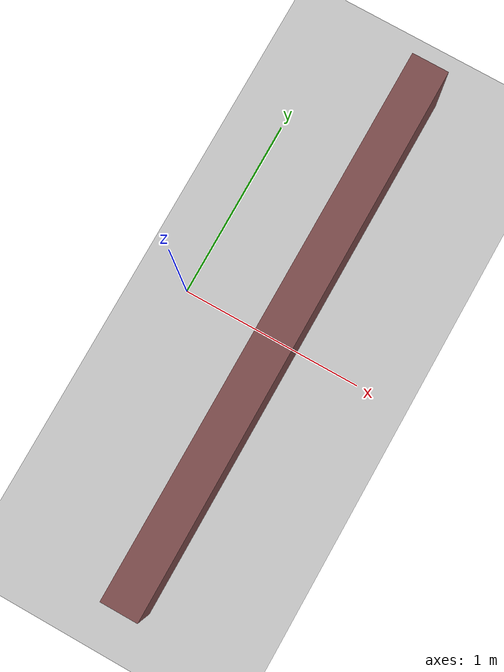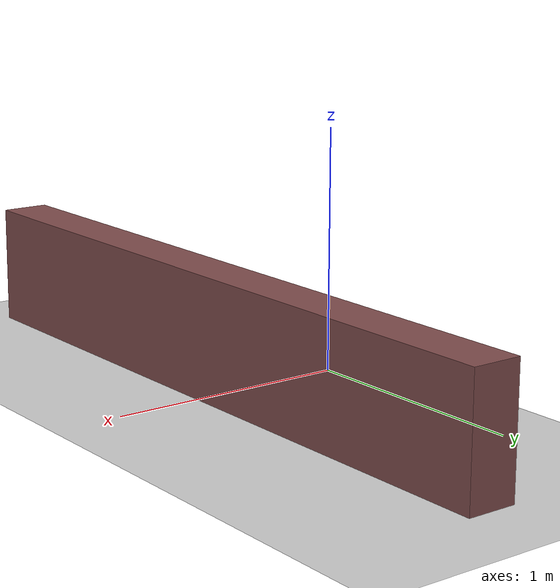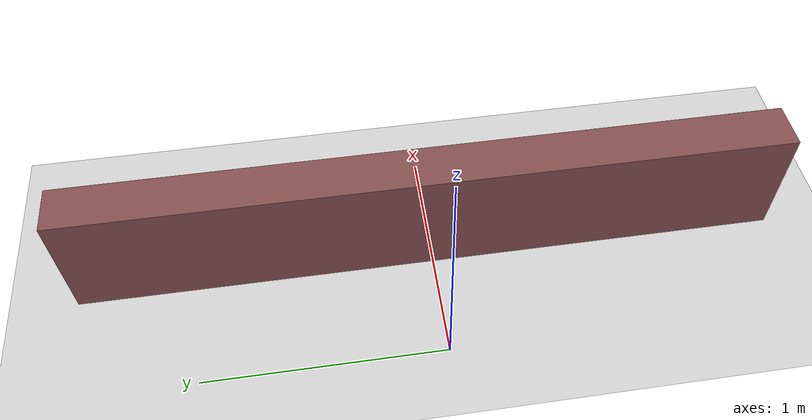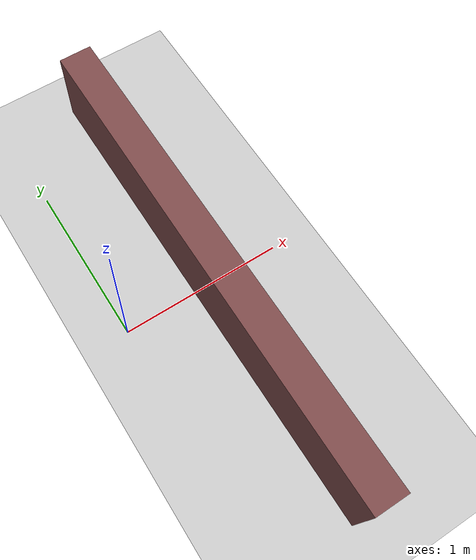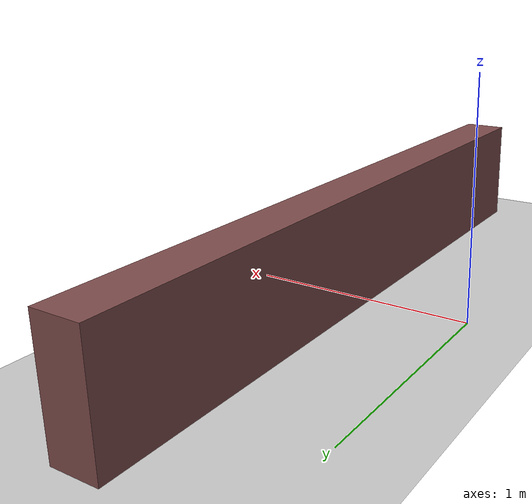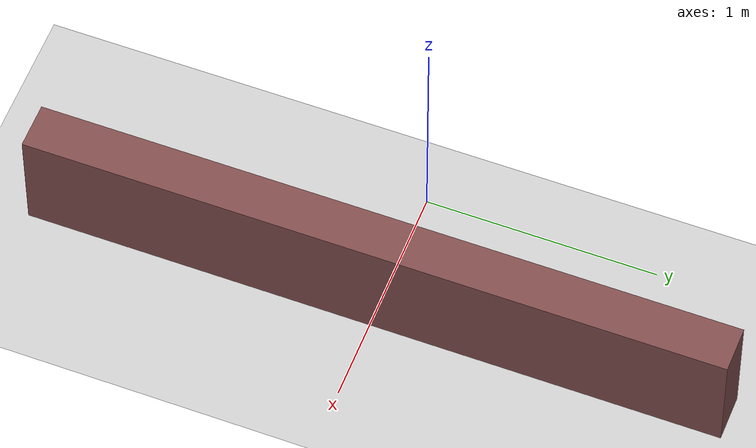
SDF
<?xml version="1.0"?>
<sdf version="1.6">
  <world name="default">

    <include><uri>model://ground_plane</uri></include>
    <include><uri>model://sun</uri></include>

    <model name="wall_close">
      <static>true</static>
      <pose>0.55 0 0.25 0 0 0</pose>
      <link name="link">
        <collision name="c"><geometry><box><size>0.2 3.0 0.5</size></box></geometry></collision>
        <visual name="v">
          <geometry><box><size>0.2 3.0 0.5</size></box></geometry>
          <material><ambient>0.5 0.3 0.3 1</ambient><diffuse>0.5 0.3 0.3 1</diffuse></material>
        </visual>
      </link>
    </model>

  </world>
</sdf>
